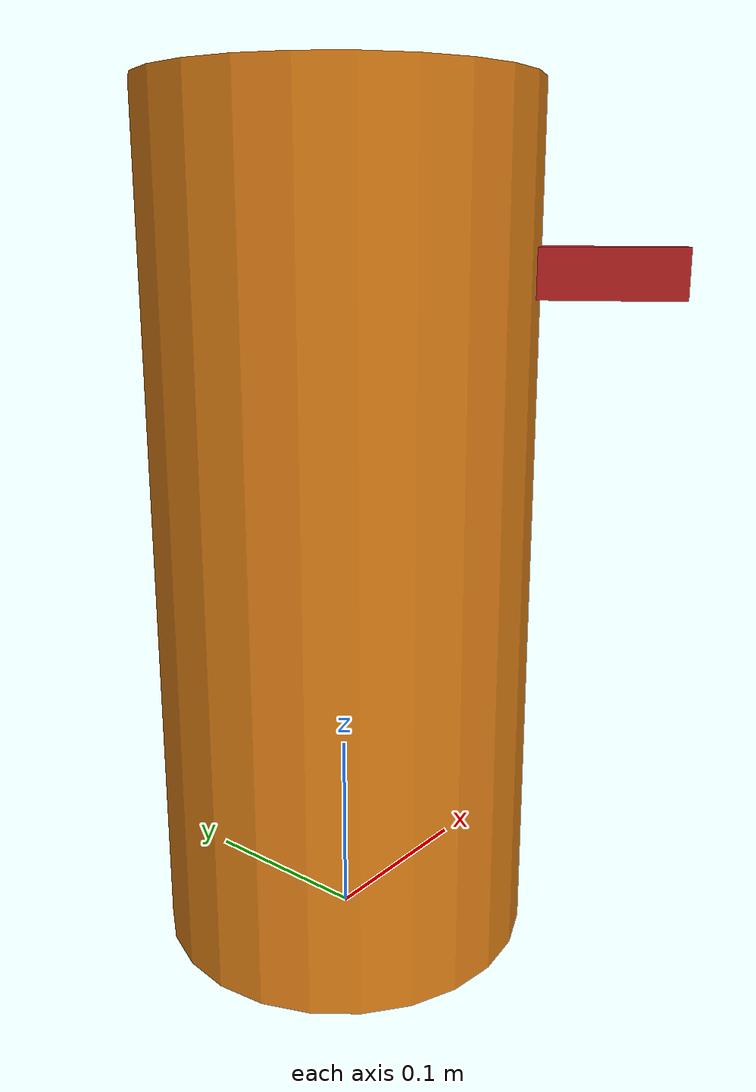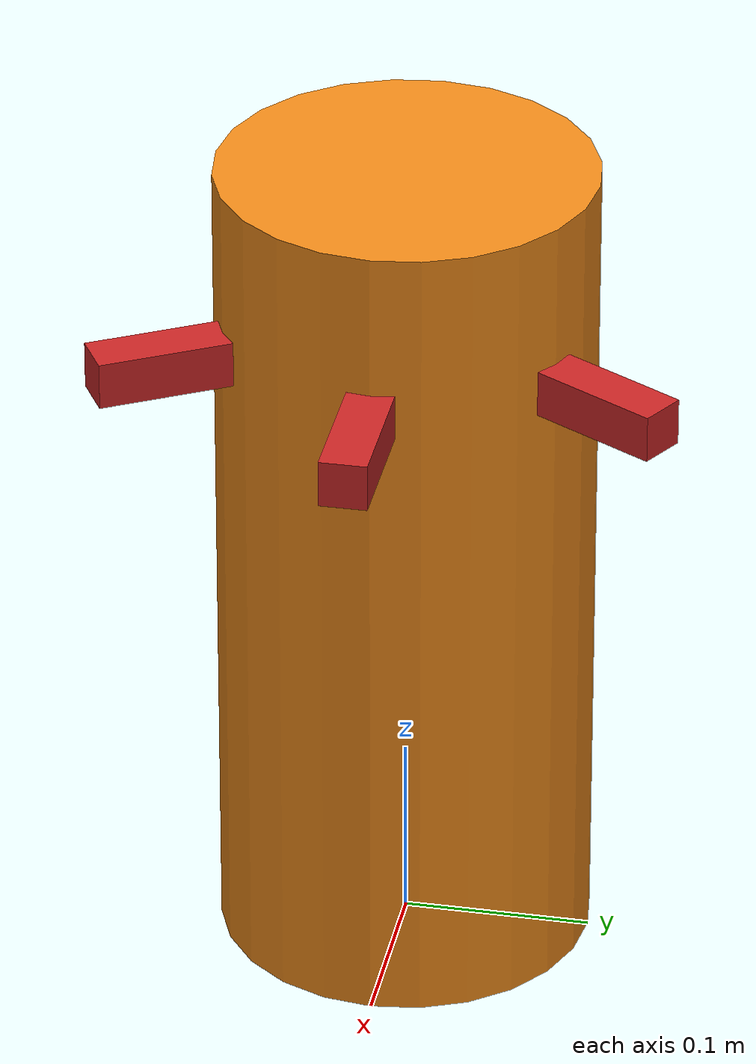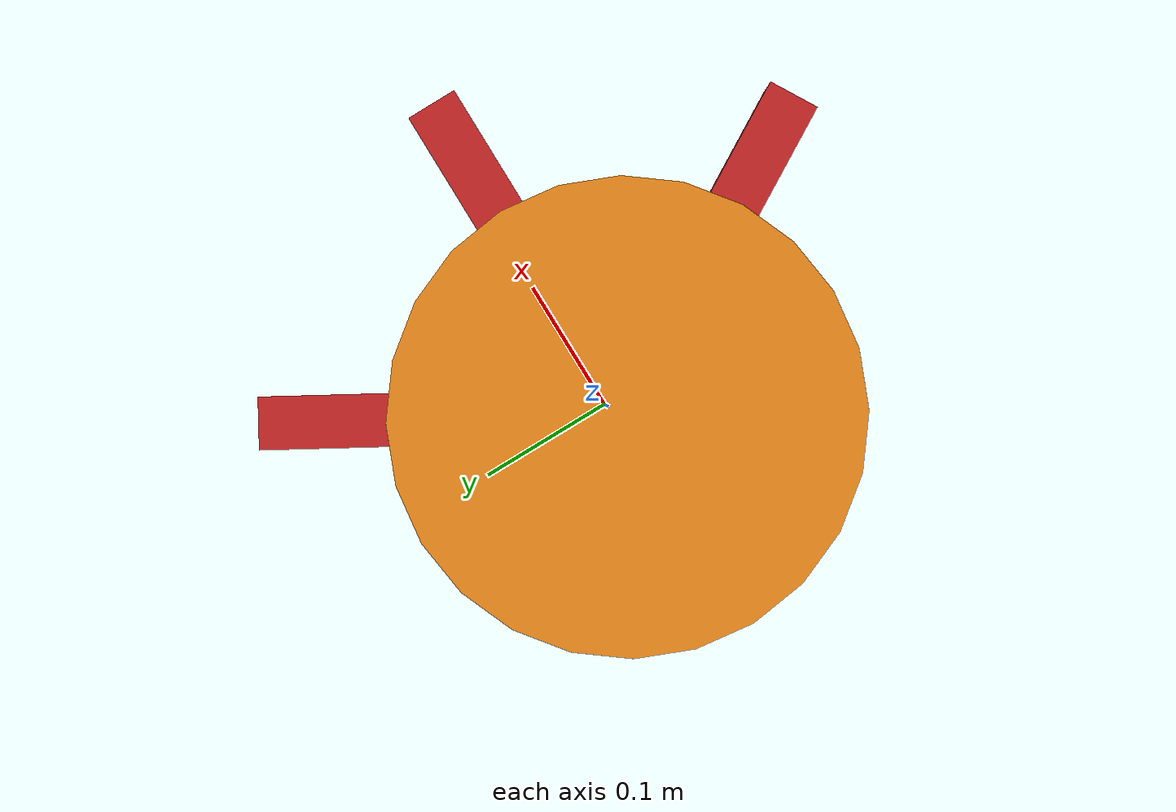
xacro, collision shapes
<?xml version="1.0"?>
<!-- Revolute-Revolute Manipulator -->
<robot name="multi_d435" xmlns:xacro="http://www.ros.org/wiki/xacro">

  <!-- Constants for robot dimensions -->
  <xacro:property name="mass" value="0.5" /> <!-- arbitrary value for mass -->
  <xacro:property name="width" value="0.1" /> <!-- Radius of the camera mount -->
  <xacro:property name="height" value="0.45" /> <!--Height of the camera mount -->
  <xacro:property name="camera_length" value="0.09" /> <!-- Size of square 'camera' box -->
  <xacro:property name="camera_width" value="0.025" /> <!-- Space btw top of beam and the each joint -->
  <xacro:property name="angle_diff" value="${pi/3}" /> <!-- Space btw top of beam and the each joint -->

  <!-- Import all Gazebo-customization elements, including Gazebo colors -->
  <xacro:include filename="$(find multi_d435_description)/urdf/multi_d435.gazebo" />
  <!-- Import Rviz colors -->
  <xacro:include filename="$(find multi_d435_description)/urdf/materials.xacro" />

  <!-- Used for fixing mount to Gazebo 'base_link' -->
  <link name="world"/>

  <joint name="fixed" type="fixed">
    <parent link="world"/>
    <child link="link1"/>
  </joint>

  <!-- Base Link -->
  <link name="link1">
    <collision>
      <origin xyz="0 0 ${height/2}" rpy="0 0 0"/>
      <geometry>
         <cylinder radius="${width}" length="${height}"/>
      </geometry>
    </collision>

    <visual>
      <origin xyz="0 0 ${height/2}" rpy="0 0 0"/>
      <geometry>
	       <cylinder radius="${width}" length="${height}"/>
      </geometry>

      <material name="orange"/>
    </visual>

    <inertial>
      <origin xyz="0 0 ${height/2}" rpy="0 0 0"/>
      <mass value="${mass}"/>
      <inertia
	  ixx="${mass / 12.0 * (width*width + height*height)}" ixy="0.0" ixz="0.0"
	  iyy="${mass / 12.0 * (height*height + width*width)}" iyz="0.0"
	  izz="${mass / 12.0 * (width*width + width*width)}"/>
    </inertial>
  </link>

  <joint name="camera_joint_1" type="fixed">
    <origin xyz="${width+camera_width} 0 ${height-camera_length}" rpy="0 0 0"/>
    <parent link="link1"/>
    <child link="camera_link_1"/>
  </joint>

  <joint name="camera_joint_2" type="fixed">
    <origin xyz="${(width+camera_width)*cos(angle_diff)} ${(width+camera_width)*sin(angle_diff)} ${height-camera_length}" rpy="0 0 ${angle_diff}"/>
    <parent link="link1"/>
    <child link="camera_link_2"/>
  </joint>

  <joint name="camera_joint_3" type="fixed">
    <origin xyz="${(width+camera_width)*cos(angle_diff)} -${(width+camera_width)*sin(angle_diff)} ${height-camera_length}" rpy="0 0 -${angle_diff}"/>
    <parent link="link1"/>
    <child link="camera_link_3"/>
  </joint>

  <!-- Camera 1-->
  <link name="camera_link_1">
    <collision>
      <origin xyz="0 0 0" rpy="0 0 0"/>
      <geometry>
	       <box size="${camera_length} ${camera_width} ${camera_width}"/>
      </geometry>
    </collision>

    <visual>
      <origin xyz="0 0 0" rpy="${pi/2} ${pi/2} ${pi/2}"/>
      <geometry>
	       <mesh filename="package://multi_d435_description/meshes/d435.dae"/>
      </geometry>
      <material name="red"/>
    </visual>

    <inertial>
      <mass value="0.0615752" />
      <origin xyz="0 0 0" rpy="0 0 0"/>
      <inertia ixx="9.108e-05" ixy="0" ixz="0" iyy="2.51e-06" iyz="0" izz="8.931e-05" />
    </inertial>
  </link>

  <!-- Camera 2-->
  <link name="camera_link_2">
    <collision>
      <origin xyz="0 0 0" rpy="0 0 0"/>
      <geometry>
	       <box size="${camera_length} ${camera_width} ${camera_width}"/>
      </geometry>
    </collision>

    <visual>
      <origin xyz="0 0 0" rpy="${pi/2} ${pi/2} ${pi/2}"/>
      <geometry>
	       <mesh filename="package://multi_d435_description/meshes/d435.dae"/>
      </geometry>
      <material name="red"/>
    </visual>

    <inertial>
      <mass value="0.0615752" />
      <origin xyz="0 0 0" rpy="0 0 0"/>
      <inertia ixx="9.108e-05" ixy="0" ixz="0" iyy="2.51e-06" iyz="0" izz="8.931e-05" />
    </inertial>
  </link>

  <!-- Camera 3-->
  <link name="camera_link_3">
    <collision>
      <origin xyz="0 0 0" rpy="0 0 0"/>
      <geometry>
	       <box size="${camera_length} ${camera_width} ${camera_width}"/>
      </geometry>
    </collision>

    <visual>
      <origin xyz="0 0 0" rpy="${pi/2} ${pi/2} ${pi/2}"/>
      <geometry>
	       <mesh filename="package://multi_d435_description/meshes/d435.dae"/>
      </geometry>
      <material name="red"/>
    </visual>
    <inertial>
      <mass value="0.0615752" />
      <origin xyz="0 0 0" rpy="0 0 0"/>
      <inertia ixx="9.108e-05" ixy="0" ixz="0" iyy="2.51e-06" iyz="0" izz="8.931e-05" />
    </inertial>
  </link>

  <!-- generate an optical frame http://www.ros.org/reps/rep-0103.html#suffix-frames
      so that ros and opencv can operate on the camera frame correctly -->
  <joint name="camera_optical_joint_1" type="fixed">
    <!-- these values have to be these values otherwise the gazebo camera image
        won't be aligned properly with the frame it is supposedly originating from -->
    <origin xyz="0 0 0" rpy="${-pi/2} 0 ${-pi/2}"/>
    <parent link="camera_link_1"/>
    <child link="camera_link_optical_1"/>
  </joint>

  <link name="camera_link_optical_1">
  </link>

  <!-- generate an optical frame http://www.ros.org/reps/rep-0103.html#suffix-frames
      so that ros and opencv can operate on the camera frame correctly -->
  <joint name="camera_optical_joint_2" type="fixed">
    <!-- these values have to be these values otherwise the gazebo camera image
        won't be aligned properly with the frame it is supposedly originating from -->
    <origin xyz="0 0 0" rpy="${-pi/2} 0 ${-pi/2}"/>
    <parent link="camera_link_2"/>
    <child link="camera_link_optical_2"/>
  </joint>

  <link name="camera_link_optical_2">
  </link>

  <!-- generate an optical frame http://www.ros.org/reps/rep-0103.html#suffix-frames
      so that ros and opencv can operate on the camera frame correctly -->
  <joint name="camera_optical_joint_3" type="fixed">
    <!-- these values have to be these values otherwise the gazebo camera image
        won't be aligned properly with the frame it is supposedly originating from -->
    <origin xyz="0 0 0" rpy="${-pi/2} 0 ${-pi/2}"/>
    <parent link="camera_link_3"/>
    <child link="camera_link_optical_3"/>
  </joint>

  <link name="camera_link_optical_3">
  </link>

</robot>
